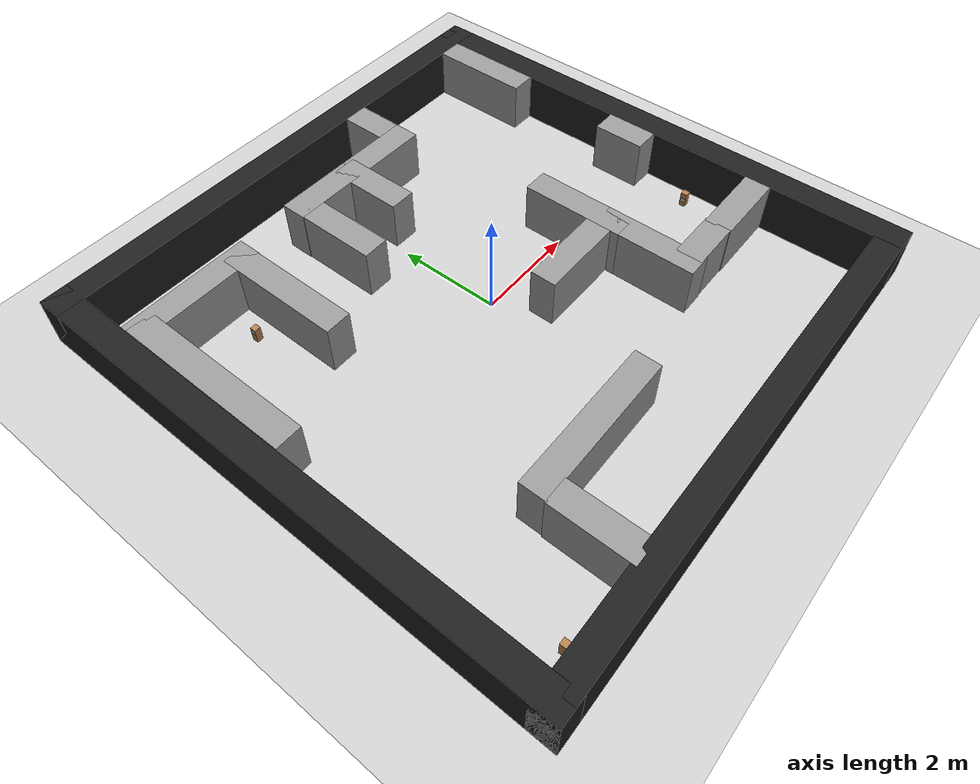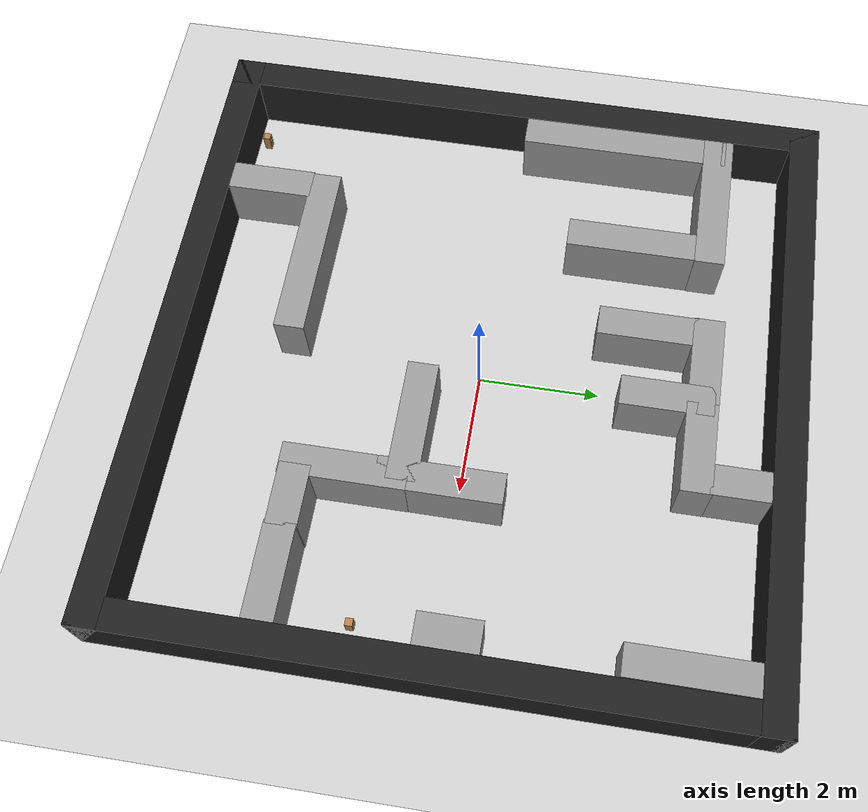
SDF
<sdf version="1.7">
 <world name="default">
  <light name="sun" type="directional">
   <pose>0 0 10 0 -0 0</pose>
   <diffuse>0.8 0.8 0.8 1</diffuse>
   <specular>0.2 0.2 0.2 1</specular>
   <attenuation>
    <range>1000</range>
    <constant>0.9</constant>
    <linear>0.01</linear>
    <quadratic>0.001</quadratic>
   </attenuation>
   <direction>-0.5 0.1 -0.9</direction>
   <spot><inner_angle>0</inner_angle><outer_angle>0</outer_angle><falloff>0</falloff></spot>
  </light>
  <model name="ground_plane">
   <static>1</static>
   <link name="link">
    <collision name="collision">
     <geometry><plane><normal>0 0 1</normal><size>100 100</size></plane></geometry>
     <surface><friction><ode><mu>100</mu><mu2>50</mu2></ode></friction></surface>
    </collision>
    <visual name="visual">
     <cast_shadows>0</cast_shadows>
     <geometry><plane><normal>0 0 1</normal><size>100 100</size></plane></geometry>
     <material>
      <script><uri>file://media/materials/scripts/gazebo.material</uri><name>Gazebo/Grey</name></script>
     </material>
    </visual>
   </link>
  </model>
  <gravity>0 0 -9.8</gravity>
  <magnetic_field>6e-06 2.3e-05 -4.2e-05</magnetic_field>
  <atmosphere type="adiabatic"/>
  <physics type="ode">
   <max_step_size>0.001</max_step_size>
   <real_time_factor>1</real_time_factor>
   <real_time_update_rate>1000</real_time_update_rate>
  </physics>
  <scene><ambient>0.4 0.4 0.4 1</ambient><background>0.7 0.7 0.7 1</background><shadows>1</shadows></scene>
  <audio><device>default</device></audio>
  <spherical_coordinates>
   <surface_model>EARTH_WGS84</surface_model>
   <latitude_deg>0</latitude_deg>
   <longitude_deg>0</longitude_deg>
   <elevation>0</elevation>
   <heading_deg>0</heading_deg>
  </spherical_coordinates>
  <model name="north_wall">
   <static>1</static>
   <pose>5 0 0.5 0 -0 0</pose>
   <link name="link">
    <inertial>
     <mass>1</mass>
     <inertia>
      <ixx>0.166667</ixx>
      <ixy>0</ixy>
      <ixz>0</ixz>
      <iyy>0.166667</iyy>
      <iyz>0</iyz>
      <izz>0.166667</izz>
     </inertia>
    </inertial>
    <collision name="collision"><geometry><box><size>0.5 10.5 1</size></box></geometry></collision>
    <visual name="visual">
     <geometry><box><size>0.5 10.5 1</size></box></geometry>
     <material>
      <script><name>Gazebo/Black</name><uri>file://media/materials/scripts/gazebo.material</uri></script>
     </material>
    </visual>
   </link>
  </model>
  <model name="south_wall">
   <static>1</static>
   <pose>-5 0 0.5 0 -0 0</pose>
   <link name="link">
    <inertial>
     <mass>1</mass>
     <inertia>
      <ixx>0.166667</ixx>
      <ixy>0</ixy>
      <ixz>0</ixz>
      <iyy>0.166667</iyy>
      <iyz>0</iyz>
      <izz>0.166667</izz>
     </inertia>
    </inertial>
    <collision name="collision"><geometry><box><size>0.5 10.5 1</size></box></geometry></collision>
    <visual name="visual">
     <geometry><box><size>0.5 10.5 1</size></box></geometry>
     <material>
      <script><name>Gazebo/Black</name><uri>file://media/materials/scripts/gazebo.material</uri></script>
     </material>
    </visual>
   </link>
  </model>
  <model name="east_wall">
   <static>1</static>
   <pose>0 -5 0.5 0 -0 0</pose>
   <link name="link">
    <inertial>
     <mass>1</mass>
     <inertia>
      <ixx>0.166667</ixx>
      <ixy>0</ixy>
      <ixz>0</ixz>
      <iyy>0.166667</iyy>
      <iyz>0</iyz>
      <izz>0.166667</izz>
     </inertia>
    </inertial>
    <collision name="collision"><geometry><box><size>10.5 0.5 1</size></box></geometry></collision>
    <visual name="visual">
     <geometry><box><size>10.5 0.5 1</size></box></geometry>
     <material>
      <script><name>Gazebo/Black</name><uri>file://media/materials/scripts/gazebo.material</uri></script>
     </material>
    </visual>
   </link>
  </model>
  <model name="west_wall">
   <static>1</static>
   <pose>0 5 0.5 0 -0 0</pose>
   <link name="link">
    <inertial>
     <mass>1</mass>
     <inertia>
      <ixx>0.166667</ixx>
      <ixy>0</ixy>
      <ixz>0</ixz>
      <iyy>0.166667</iyy>
      <iyz>0</iyz>
      <izz>0.166667</izz>
     </inertia>
    </inertial>
    <collision name="collision"><geometry><box><size>10.5 0.5 1</size></box></geometry></collision>
    <visual name="visual">
     <geometry><box><size>10.5 0.5 1</size></box></geometry>
     <material>
      <script><name>Gazebo/Black</name><uri>file://media/materials/scripts/gazebo.material</uri></script>
     </material>
    </visual>
   </link>
  </model>
  <model name="h1">
   <static>1</static>
   <pose>4.5 0.25 0.5 0 -0 0</pose>
   <link name="link">
    <inertial>
     <mass>1</mass>
     <inertia>
      <ixx>0.166667</ixx>
      <ixy>0</ixy>
      <ixz>0</ixz>
      <iyy>0.166667</iyy>
      <iyz>0</iyz>
      <izz>0.166667</izz>
     </inertia>
    </inertial>
    <collision name="collision"><geometry><box><size>0.5 1 1</size></box></geometry></collision>
    <visual name="visual">
     <geometry><box><size>0.5 1 1</size></box></geometry>
     <material>
      <script><name>Gazebo/Grey</name><uri>file://media/materials/scripts/gazebo.material</uri></script>
     </material>
    </visual>
   </link>
  </model>
  <model name="h2">
   <static>1</static>
   <pose>1.57804 4.31111 0.5 0 -0 0</pose>
   <link name="link">
    <inertial>
     <mass>1</mass>
     <inertia>
      <ixx>0.166667</ixx>
      <ixy>0</ixy>
      <ixz>0</ixz>
      <iyy>0.166667</iyy>
      <iyz>0</iyz>
      <izz>0.166667</izz>
     </inertia>
    </inertial>
    <collision name="collision"><geometry><box><size>0.5 1 1</size></box></geometry></collision>
    <visual name="visual">
     <geometry><box><size>0.5 1 1</size></box></geometry>
     <material>
      <script><name>Gazebo/Grey</name><uri>file://media/materials/scripts/gazebo.material</uri></script>
     </material>
    </visual>
   </link>
  </model>
  <model name="h3">
   <static>1</static>
   <pose>-0.906334 2.82126 0.5 0 -0 0</pose>
   <link name="link">
    <inertial>
     <mass>1</mass>
     <inertia>
      <ixx>0.166667</ixx>
      <ixy>0</ixy>
      <ixz>0</ixz>
      <iyy>0.166667</iyy>
      <iyz>0</iyz>
      <izz>0.166667</izz>
     </inertia>
    </inertial>
    <collision name="collision"><geometry><box><size>0.5 2 1</size></box></geometry></collision>
    <visual name="visual">
     <geometry><box><size>0.5 2 1</size></box></geometry>
     <material>
      <script><name>Gazebo/Grey</name><uri>file://media/materials/scripts/gazebo.material</uri></script>
     </material>
    </visual>
   </link>
  </model>
  <model name="h5">
   <static>1</static>
   <pose>2.2226 -0.254386 0.5 0 -0 0</pose>
   <link name="link">
    <inertial>
     <mass>1</mass>
     <inertia>
      <ixx>0.166667</ixx>
      <ixy>0</ixy>
      <ixz>0</ixz>
      <iyy>0.166667</iyy>
      <iyz>0</iyz>
      <izz>0.166667</izz>
     </inertia>
    </inertial>
    <collision name="collision"><geometry><box><size>0.5 2 1</size></box></geometry></collision>
    <visual name="visual">
     <geometry><box><size>0.5 2 1</size></box></geometry>
     <material>
      <script><name>Gazebo/Grey</name><uri>file://media/materials/scripts/gazebo.material</uri></script>
     </material>
    </visual>
   </link>
  </model>
  <model name="h6">
   <static>1</static>
   <pose>0.285592 3.0417 0.5 0 -0 0</pose>
   <link name="link">
    <inertial>
     <mass>1</mass>
     <inertia>
      <ixx>0.166667</ixx>
      <ixy>0</ixy>
      <ixz>0</ixz>
      <iyy>0.166667</iyy>
      <iyz>0</iyz>
      <izz>0.166667</izz>
     </inertia>
    </inertial>
    <collision name="collision"><geometry><box><size>0.5 1.5 1</size></box></geometry></collision>
    <visual name="visual">
     <geometry><box><size>0.5 1.5 1</size></box></geometry>
     <material>
      <script><name>Gazebo/Grey</name><uri>file://media/materials/scripts/gazebo.material</uri></script>
     </material>
    </visual>
   </link>
  </model>
  <model name="h7">
   <static>1</static>
   <pose>-2.76535 -4.09488 0.5 0 -0 0</pose>
   <link name="link">
    <inertial>
     <mass>1</mass>
     <inertia>
      <ixx>0.166667</ixx>
      <ixy>0</ixy>
      <ixz>0</ixz>
      <iyy>0.166667</iyy>
      <iyz>0</iyz>
      <izz>0.166667</izz>
     </inertia>
    </inertial>
    <collision name="collision"><geometry><box><size>0.5 1.5 1</size></box></geometry></collision>
    <visual name="visual">
     <geometry><box><size>0.5 1.5 1</size></box></geometry>
     <material>
      <script><name>Gazebo/Grey</name><uri>file://media/materials/scripts/gazebo.material</uri></script>
     </material>
    </visual>
   </link>
  </model>
  <model name="h8">
   <static>1</static>
   <pose>2.225 -1.75042 0.5 0 -0 0</pose>
   <link name="link">
    <inertial>
     <mass>1</mass>
     <inertia>
      <ixx>0.166667</ixx>
      <ixy>0</ixy>
      <ixz>0</ixz>
      <iyy>0.166667</iyy>
      <iyz>0</iyz>
      <izz>0.166667</izz>
     </inertia>
    </inertial>
    <collision name="collision"><geometry><box><size>0.5 2 1</size></box></geometry></collision>
    <visual name="visual">
     <geometry><box><size>0.5 2 1</size></box></geometry>
     <material>
      <script><name>Gazebo/Grey</name><uri>file://media/materials/scripts/gazebo.material</uri></script>
     </material>
    </visual>
   </link>
  </model>
  <model name="h9">
   <static>1</static>
   <pose>-2.50519 2.38163 0.5 0 -0 0</pose>
   <link name="link">
    <inertial>
     <mass>1</mass>
     <inertia>
      <ixx>0.166667</ixx>
      <ixy>0</ixy>
      <ixz>0</ixz>
      <iyy>0.166667</iyy>
      <iyz>0</iyz>
      <izz>0.166667</izz>
     </inertia>
    </inertial>
    <collision name="collision"><geometry><box><size>0.5 2.5 1</size></box></geometry></collision>
    <visual name="visual">
     <geometry><box><size>0.5 2.5 1</size></box></geometry>
     <material>
      <script><name>Gazebo/Grey</name><uri>file://media/materials/scripts/gazebo.material</uri></script>
     </material>
    </visual>
   </link>
  </model>
  <model name="h10">
   <static>1</static>
   <pose>-4.49131 1.89926 0.5 0 -0 0</pose>
   <link name="link">
    <inertial>
     <mass>1</mass>
     <inertia>
      <ixx>0.166667</ixx>
      <ixy>0</ixy>
      <ixz>0</ixz>
      <iyy>0.166667</iyy>
      <iyz>0</iyz>
      <izz>0.166667</izz>
     </inertia>
    </inertial>
    <collision name="collision"><geometry><box><size>0.5 3.5 1</size></box></geometry></collision>
    <visual name="visual">
     <geometry><box><size>0.5 3.5 1</size></box></geometry>
     <material>
      <script><name>Gazebo/Grey</name><uri>file://media/materials/scripts/gazebo.material</uri></script>
     </material>
    </visual>
   </link>
  </model>
  <model name="h11">
   <static>1</static>
   <pose>4.48852 3.75177 0.5 0 -0 0</pose>
   <link name="link">
    <inertial>
     <mass>1</mass>
     <inertia>
      <ixx>0.166667</ixx>
      <ixy>0</ixy>
      <ixz>0</ixz>
      <iyy>0.166667</iyy>
      <iyz>0</iyz>
      <izz>0.166667</izz>
     </inertia>
    </inertial>
    <collision name="collision"><geometry><box><size>0.5 2 1</size></box></geometry></collision>
    <visual name="visual">
     <geometry><box><size>0.5 2 1</size></box></geometry>
     <material>
      <script><name>Gazebo/Grey</name><uri>file://media/materials/scripts/gazebo.material</uri></script>
     </material>
    </visual>
   </link>
  </model>
  <model name="v12">
   <static>1</static>
   <pose>1.08185 3.60384 0.5 0 -0 0</pose>
   <link name="link">
    <inertial>
     <mass>1</mass>
     <inertia>
      <ixx>0.166667</ixx>
      <ixy>0</ixy>
      <ixz>0</ixz>
      <iyy>0.166667</iyy>
      <iyz>0</iyz>
      <izz>0.166667</izz>
     </inertia>
    </inertial>
    <collision name="collision"><geometry><box><size>1.5 0.5 1</size></box></geometry></collision>
    <visual name="visual">
     <geometry><box><size>1.5 0.5 1</size></box></geometry>
     <material>
      <script><name>Gazebo/Grey</name><uri>file://media/materials/scripts/gazebo.material</uri></script>
     </material>
    </visual>
   </link>
  </model>
  <model name="v13">
   <static>1</static>
   <pose>4 -2.5 0.5 0 -0 0</pose>
   <link name="link">
    <inertial>
     <mass>1</mass>
     <inertia>
      <ixx>0.166667</ixx>
      <ixy>0</ixy>
      <ixz>0</ixz>
      <iyy>0.166667</iyy>
      <iyz>0</iyz>
      <izz>0.166667</izz>
     </inertia>
    </inertial>
    <collision name="collision"><geometry><box><size>1.5 0.5 1</size></box></geometry></collision>
    <visual name="visual">
     <geometry><box><size>1.5 0.5 1</size></box></geometry>
     <material>
      <script><name>Gazebo/Grey</name><uri>file://media/materials/scripts/gazebo.material</uri></script>
     </material>
    </visual>
   </link>
  </model>
  <model name="v15">
   <static>1</static>
   <pose>1.31996 -0.841626 0.5 0 -0 0</pose>
   <link name="link">
    <inertial>
     <mass>1</mass>
     <inertia>
      <ixx>0.166667</ixx>
      <ixy>0</ixy>
      <ixz>0</ixz>
      <iyy>0.166667</iyy>
      <iyz>0</iyz>
      <izz>0.166667</izz>
     </inertia>
    </inertial>
    <collision name="collision"><geometry><box><size>2 0.5 1</size></box></geometry></collision>
    <visual name="visual">
     <geometry><box><size>2 0.5 1</size></box></geometry>
     <material>
      <script><name>Gazebo/Grey</name><uri>file://media/materials/scripts/gazebo.material</uri></script>
     </material>
    </visual>
   </link>
  </model>
  <model name="v16">
   <static>1</static>
   <pose>-1.49419 -3.1222 0.5 0 -0 0</pose>
   <link name="link">
    <inertial>
     <mass>1</mass>
     <inertia>
      <ixx>0.166667</ixx>
      <ixy>0</ixy>
      <ixz>0</ixz>
      <iyy>0.166667</iyy>
      <iyz>0</iyz>
      <izz>0.166667</izz>
     </inertia>
    </inertial>
    <collision name="collision"><geometry><box><size>3 0.5 1</size></box></geometry></collision>
    <visual name="visual">
     <geometry><box><size>3 0.5 1</size></box></geometry>
     <material>
      <script><name>Gazebo/Grey</name><uri>file://media/materials/scripts/gazebo.material</uri></script>
     </material>
    </visual>
   </link>
  </model>
  <model name="v18">
   <static>1</static>
   <pose>-3.4972 3.52257 0.5 0 -0 0</pose>
   <link name="link">
    <inertial>
     <mass>1</mass>
     <inertia>
      <ixx>0.166667</ixx>
      <ixy>0</ixy>
      <ixz>0</ixz>
      <iyy>0.166667</iyy>
      <iyz>0</iyz>
      <izz>0.166667</izz>
     </inertia>
    </inertial>
    <collision name="collision"><geometry><box><size>2.5 0.5 1</size></box></geometry></collision>
    <visual name="visual">
     <geometry><box><size>2.5 0.5 1</size></box></geometry>
     <material>
      <script><name>Gazebo/Grey</name><uri>file://media/materials/scripts/gazebo.material</uri></script>
     </material>
    </visual>
   </link>
  </model>
  <model name="v19">
   <static>1</static>
   <pose>-0.418246 3.60808 0.5 0 -0 0</pose>
   <link name="link">
    <inertial>
     <mass>1</mass>
     <inertia>
      <ixx>0.166667</ixx>
      <ixy>0</ixy>
      <ixz>0</ixz>
      <iyy>0.166667</iyy>
      <iyz>0</iyz>
      <izz>0.166667</izz>
     </inertia>
    </inertial>
    <collision name="collision"><geometry><box><size>1.5 0.5 1</size></box></geometry></collision>
    <visual name="visual">
     <geometry><box><size>1.5 0.5 1</size></box></geometry>
     <material>
      <script><name>Gazebo/Grey</name><uri>file://media/materials/scripts/gazebo.material</uri></script>
     </material>
    </visual>
   </link>
  </model>
  <model name="v20">
   <static>1</static>
   <pose>2.80009 -2.48573 0.5 0 -0 0</pose>
   <link name="link">
    <inertial>
     <mass>1</mass>
     <inertia>
      <ixx>0.166667</ixx>
      <ixy>0</ixy>
      <ixz>0</ixz>
      <iyy>0.166667</iyy>
      <iyz>0</iyz>
      <izz>0.166667</izz>
     </inertia>
    </inertial>
    <collision name="collision"><geometry><box><size>1 0.5 1</size></box></geometry></collision>
    <visual name="visual">
     <geometry><box><size>1 0.5 1</size></box></geometry>
     <material>
      <script><name>Gazebo/Grey</name><uri>file://media/materials/scripts/gazebo.material</uri></script>
     </material>
    </visual>
   </link>
  </model>
  <model name="aruco_column_6x6_100mm_42">
   <link name="link">
    <pose>0 0 0.15 0 -0 0</pose>
    <inertial>
     <mass>1</mass>
     <inertia><ixx>1</ixx><ixy>0</ixy><ixz>0</ixz><iyy>1</iyy><iyz>0</iyz><izz>1</izz></inertia>
    </inertial>
    <collision name="collision">
     <geometry><box><size>0.12 0.12 0.3</size></box></geometry>
     <surface>
      <contact>
       <poissons_ratio>0.347</poissons_ratio>
       <elastic_modulus>8.8e+09</elastic_modulus>
       <ode><kp>100000</kp><kd>1</kd><max_vel>1</max_vel><min_depth>0.001</min_depth></ode>
      </contact>
      <friction>
       <torsional>
        <coefficient>1</coefficient>
        <use_patch_radius>0</use_patch_radius>
        <surface_radius>0.05</surface_radius>
       </torsional>
      </friction>
     </surface>
    </collision>
    <visual name="visual">
     <geometry><box><size>0.12 0.12 0.3</size></box></geometry>
     <material>
      <script><uri>file://media/materials/scripts/gazebo.material</uri><name>Gazebo/Wood</name></script>
     </material>
    </visual>
   </link>
   <link name="aruco_6x6_100mm_42::main">
    <pose relative_to="aruco_6x6_100mm_42::__model__">0 0 0 0 -0 0</pose>
    <visual name="main_Visual">
     <geometry><box><size>0.1 0.1 0.001</size></box></geometry>
     <material>
      <script>
       <uri>file://media/materials/scripts</uri>
       <uri>file://media/materials/textures</uri>
       <name>aruco_6x6_100mm_42</name>
      </script>
     </material>
    </visual>
    <inertial>
     <inertia><ixx>1</ixx><ixy>0</ixy><ixz>0</ixz><iyy>1</iyy><iyz>0</iyz><izz>1</izz></inertia>
     <mass>1</mass>
    </inertial>
   </link>
   <frame name="aruco_6x6_100mm_42::__model__" attached_to="aruco_6x6_100mm_42::main">
    <pose relative_to="__model__">-0.06 0 0.24 3.14159 1.57079 3.14159</pose>
   </frame>
   <joint name="aruco_6x6_100mm_42_joint" type="fixed">
    <child>aruco_6x6_100mm_42::main</child>
    <parent>link</parent>
   </joint>
   <pose>-3.09929 2.63909 -0.001049 0 -0.000405 0</pose>
  </model>
  <model name="aruco_column_6x6_100mm_2">
   <link name="link">
    <pose>0 0 0.15 0 -0 0</pose>
    <inertial>
     <mass>1</mass>
     <inertia><ixx>1</ixx><ixy>0</ixy><ixz>0</ixz><iyy>1</iyy><iyz>0</iyz><izz>1</izz></inertia>
    </inertial>
    <collision name="collision">
     <geometry><box><size>0.12 0.12 0.3</size></box></geometry>
     <surface>
      <contact>
       <poissons_ratio>0.347</poissons_ratio>
       <elastic_modulus>8.8e+09</elastic_modulus>
       <ode><kp>100000</kp><kd>1</kd><max_vel>1</max_vel><min_depth>0.001</min_depth></ode>
      </contact>
      <friction>
       <torsional>
        <coefficient>1</coefficient>
        <use_patch_radius>0</use_patch_radius>
        <surface_radius>0.05</surface_radius>
       </torsional>
      </friction>
     </surface>
    </collision>
    <visual name="visual">
     <geometry><box><size>0.12 0.12 0.3</size></box></geometry>
     <material>
      <script><uri>file://media/materials/scripts/gazebo.material</uri><name>Gazebo/Wood</name></script>
     </material>
    </visual>
   </link>
   <link name="aruco_6x6_100mm_2::main">
    <pose relative_to="aruco_6x6_100mm_2::__model__">0 0 0 0 -0 0</pose>
    <visual name="main_Visual">
     <geometry><box><size>0.1 0.1 0.001</size></box></geometry>
     <material>
      <script>
       <uri>file://media/materials/scripts</uri>
       <uri>file://media/materials/textures</uri>
       <name>aruco_6x6_100mm_2</name>
      </script>
     </material>
    </visual>
    <inertial>
     <inertia><ixx>1</ixx><ixy>0</ixy><ixz>0</ixz><iyy>1</iyy><iyz>0</iyz><izz>1</izz></inertia>
     <mass>1</mass>
    </inertial>
   </link>
   <frame name="aruco_6x6_100mm_2::__model__" attached_to="aruco_6x6_100mm_2::main">
    <pose relative_to="__model__">-0.06 0 0.14 3.14159 1.57079 3.14159</pose>
   </frame>
   <joint name="aruco_6x6_100mm_2_joint" type="fixed">
    <child>aruco_6x6_100mm_2::main</child>
    <parent>link</parent>
   </joint>
   <pose>4.40925 -1.28469 -0.001049 0 -0.000405 0</pose>
  </model>
  <model name="aruco_column_6x6_100mm_0">
   <link name="link">
    <pose>0 0 0.15 0 -0 0</pose>
    <inertial>
     <mass>1</mass>
     <inertia><ixx>1</ixx><ixy>0</ixy><ixz>0</ixz><iyy>1</iyy><iyz>0</iyz><izz>1</izz></inertia>
    </inertial>
    <collision name="collision">
     <geometry><box><size>0.12 0.12 0.3</size></box></geometry>
     <surface>
      <contact>
       <poissons_ratio>0.347</poissons_ratio>
       <elastic_modulus>8.8e+09</elastic_modulus>
       <ode><kp>100000</kp><kd>1</kd><max_vel>1</max_vel><min_depth>0.001</min_depth></ode>
      </contact>
      <friction>
       <torsional>
        <coefficient>1</coefficient>
        <use_patch_radius>0</use_patch_radius>
        <surface_radius>0.05</surface_radius>
       </torsional>
      </friction>
     </surface>
    </collision>
    <visual name="visual">
     <geometry><box><size>0.12 0.12 0.3</size></box></geometry>
     <material>
      <script><uri>file://media/materials/scripts/gazebo.material</uri><name>Gazebo/Wood</name></script>
     </material>
    </visual>
   </link>
   <link name="aruco_6x6_100mm_0::main">
    <pose relative_to="aruco_6x6_100mm_0::__model__">0 0 0 0 -0 0</pose>
    <visual name="main_Visual">
     <geometry><box><size>0.1 0.1 0.001</size></box></geometry>
     <material>
      <script>
       <uri>file://media/materials/scripts</uri>
       <uri>file://media/materials/textures</uri>
       <name>aruco_6x6_100mm_0</name>
      </script>
     </material>
    </visual>
    <inertial>
     <inertia><ixx>1</ixx><ixy>0</ixy><ixz>0</ixz><iyy>1</iyy><iyz>0</iyz><izz>1</izz></inertia>
     <mass>1</mass>
    </inertial>
   </link>
   <frame name="aruco_6x6_100mm_0::__model__" attached_to="aruco_6x6_100mm_0::main">
    <pose relative_to="__model__">-0.06 0 0.19 3.14159 1.57079 3.14159</pose>
   </frame>
   <joint name="aruco_6x6_100mm_0_joint" type="fixed">
    <child>aruco_6x6_100mm_0::main</child>
    <parent>link</parent>
   </joint>
   <pose>-4.15269 -4.57595 -0.001049 -0 -0.000405 -1.57</pose>
  </model>
 </world>
</sdf>
